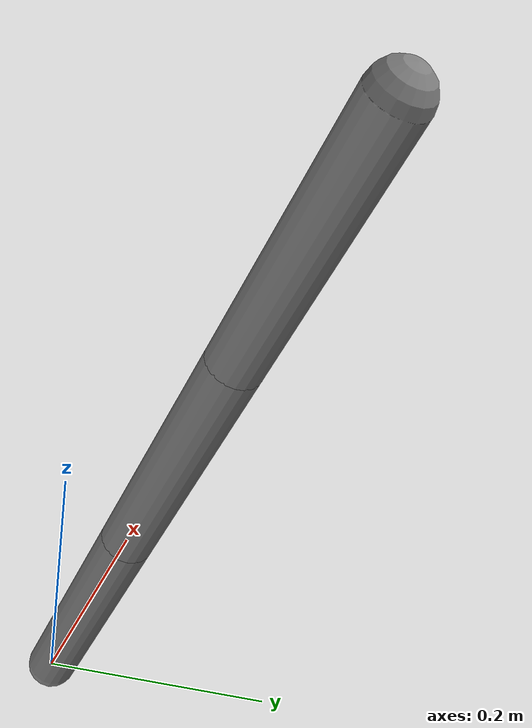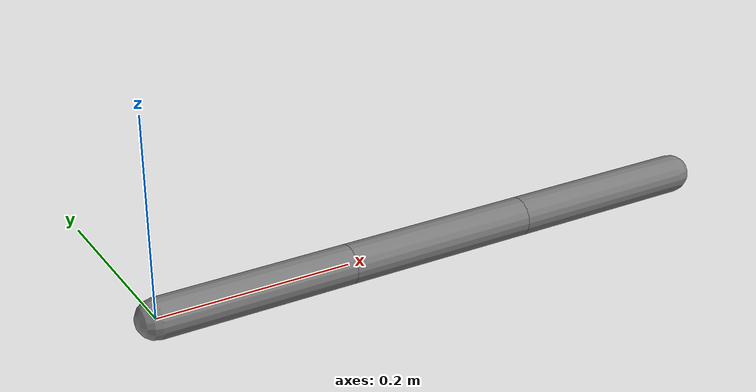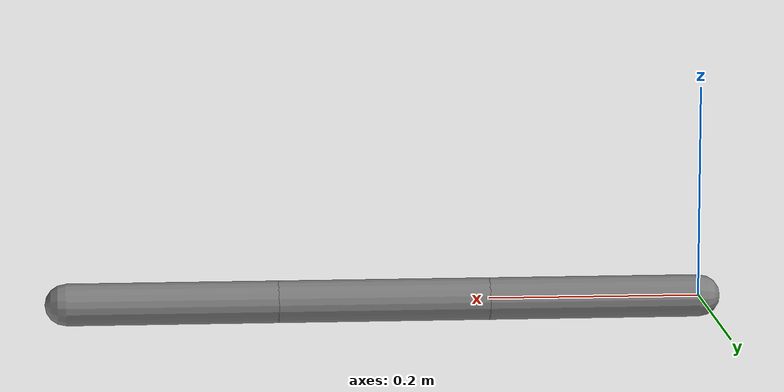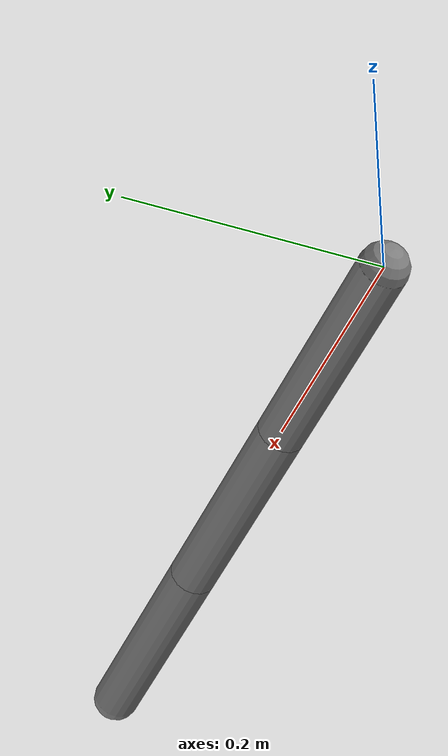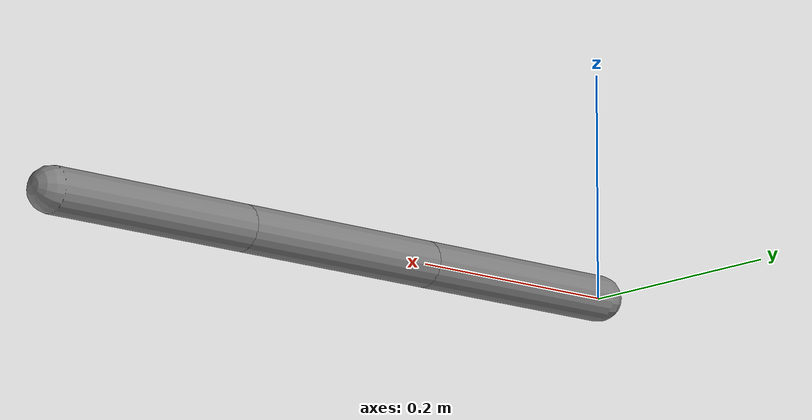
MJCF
<mujoco model="chain3">
  <worldbody>
    <body name="l1" pos="0 0 0">
      <joint type="hinge" axis="0 1 0"/>
      <inertial mass="0.3" pos="0.1 0 0" diaginertia="0.005 0.005 0.005"/>
      <geom type="capsule" fromto="0 0 0 0.2 0 0" size="0.02" contype="0" conaffinity="0"/>
      <body name="l2" pos="0.2 0 0">
        <joint type="hinge" axis="0 1 0"/>
        <inertial mass="0.3" pos="0.1 0 0" diaginertia="0.005 0.005 0.005"/>
        <geom type="capsule" fromto="0 0 0 0.2 0 0" size="0.02" contype="0" conaffinity="0"/>
        <body name="l3" pos="0.2 0 0">
          <joint type="hinge" axis="0 1 0"/>
          <inertial mass="0.3" pos="0.1 0 0" diaginertia="0.005 0.005 0.005"/>
          <geom type="capsule" fromto="0 0 0 0.2 0 0" size="0.02" contype="0" conaffinity="0"/>
        </body>
      </body>
    </body>
  </worldbody>
</mujoco>
